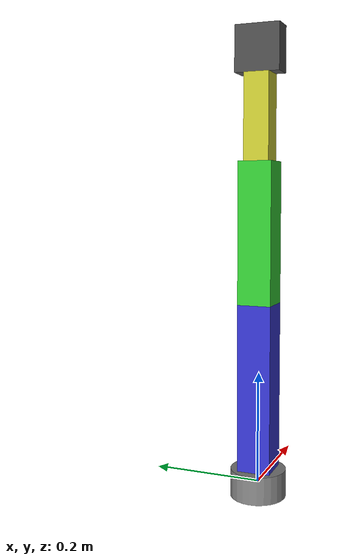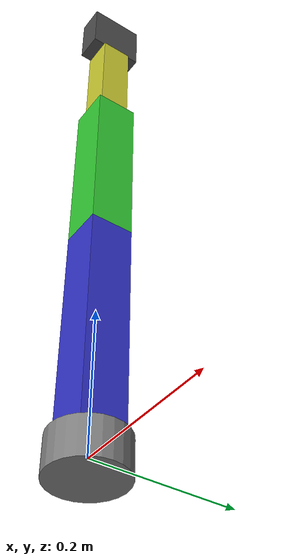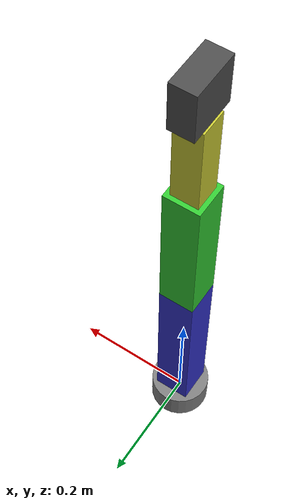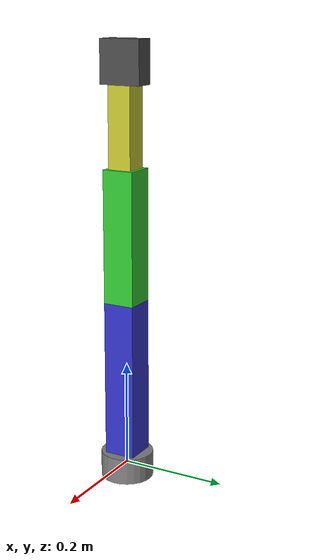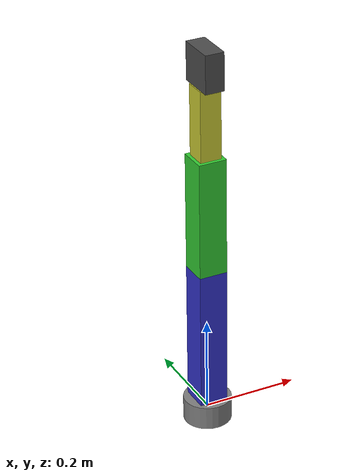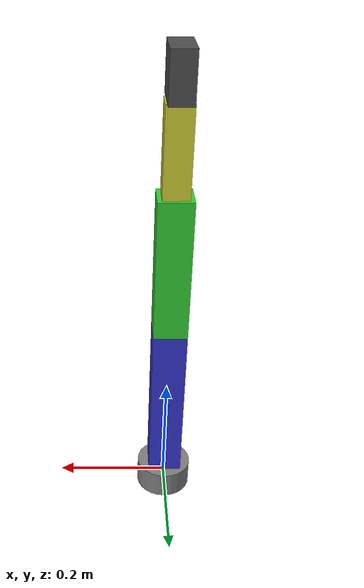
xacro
<?xml version="1.0"?>
<robot name="arm_with_gripper" xmlns:xacro="http://www.ros.org/wiki/xacro">

  <xacro:property name="link1_length" value="0.3"/>
  <xacro:property name="link2_length" value="0.25"/>
  <xacro:property name="link3_length" value="0.15"/>
  <xacro:property name="link_radius" value="0.03"/>
  <xacro:property name="link_mass" value="0.5"/>

  <link name="base_link">
    <visual>
      <geometry><cylinder radius="0.05" length="0.05"/></geometry>
      <material name="gray"><color rgba="0.5 0.5 0.5 1"/></material>
    </visual>
    <collision>
      <geometry><cylinder radius="0.05" length="0.05"/></geometry>
    </collision>
    <inertial>
      <mass value="1.0"/>
      <inertia ixx="0.01" ixy="0" ixz="0" iyy="0.01" iyz="0" izz="0.01"/>
    </inertial>
  </link>

  <link name="link1">
    <visual>
      <origin xyz="0 0 ${link1_length/2}" rpy="0 0 0"/>
      <geometry><box size="${link_radius*2} ${link_radius*2} ${link1_length}"/></geometry>
      <material name="blue"><color rgba="0.2 0.2 0.8 1"/></material>
    </visual>
    <collision>
      <origin xyz="0 0 ${link1_length/2}" rpy="0 0 0"/>
      <geometry><box size="${link_radius*2} ${link_radius*2} ${link1_length}"/></geometry>
    </collision>
    <inertial>
      <origin xyz="0 0 ${link1_length/2}" rpy="0 0 0"/>
      <mass value="${link_mass}"/>
      <inertia ixx="0.01" ixy="0" ixz="0" iyy="0.01" iyz="0" izz="0.005"/>
    </inertial>
  </link>

  <joint name="joint1" type="revolute">
    <parent link="base_link"/>
    <child link="link1"/>
    <origin xyz="0 0 0.025" rpy="0 0 0"/>
    <axis xyz="0 0 1"/>
    <limit lower="-3.14159" upper="3.14159" effort="10.0" velocity="1.0"/>
  </joint>

  <link name="link2">
    <visual>
      <origin xyz="0 0 ${link2_length/2}" rpy="0 0 0"/>
      <geometry><box size="${link_radius*2} ${link_radius*2} ${link2_length}"/></geometry>
      <material name="green"><color rgba="0.2 0.8 0.2 1"/></material>
    </visual>
    <collision>
      <origin xyz="0 0 ${link2_length/2}" rpy="0 0 0"/>
      <geometry><box size="${link_radius*2} ${link_radius*2} ${link2_length}"/></geometry>
    </collision>
    <inertial>
      <origin xyz="0 0 ${link2_length/2}" rpy="0 0 0"/>
      <mass value="${link_mass * 0.7}"/>
      <inertia ixx="0.005" ixy="0" ixz="0" iyy="0.005" iyz="0" izz="0.002"/>
    </inertial>
  </link>

  <joint name="joint2" type="revolute">
    <parent link="link1"/>
    <child link="link2"/>
    <origin xyz="0 0 ${link1_length}" rpy="0 0 0"/>
    <axis xyz="0 1 0"/>
    <limit lower="-2.0" upper="2.0" effort="10.0" velocity="1.0"/>
  </joint>

  <link name="link3">
    <visual>
      <origin xyz="0 0 ${link3_length/2}" rpy="0 0 0"/>
      <geometry><box size="${link_radius*1.5} ${link_radius*1.5} ${link3_length}"/></geometry>
      <material name="yellow"><color rgba="0.8 0.8 0.2 1"/></material>
    </visual>
    <collision>
      <origin xyz="0 0 ${link3_length/2}" rpy="0 0 0"/>
      <geometry><box size="${link_radius*1.5} ${link_radius*1.5} ${link3_length}"/></geometry>
    </collision>
    <inertial>
      <origin xyz="0 0 ${link3_length/2}" rpy="0 0 0"/>
      <mass value="${link_mass * 0.4}"/>
      <inertia ixx="0.002" ixy="0" ixz="0" iyy="0.002" iyz="0" izz="0.001"/>
    </inertial>
  </link>

  <joint name="joint3" type="revolute">
    <parent link="link2"/>
    <child link="link3"/>
    <origin xyz="0 0 ${link2_length}" rpy="0 0 0"/>
    <axis xyz="0 1 0"/>
    <limit lower="-2.0" upper="2.0" effort="5.0" velocity="1.0"/>
  </joint>

  <link name="gripper">
    <visual>
      <origin xyz="0 0 0.04" rpy="0 0 0"/>
      <geometry><box size="0.04 0.08 0.08"/></geometry>
      <material name="dark_gray"><color rgba="0.3 0.3 0.3 1"/></material>
    </visual>
    <collision>
      <origin xyz="0 0 0.04" rpy="0 0 0"/>
      <geometry><box size="0.04 0.08 0.08"/></geometry>
    </collision>
    <inertial>
      <origin xyz="0 0 0.04" rpy="0 0 0"/>
      <mass value="0.1"/>
      <inertia ixx="0.0001" ixy="0" ixz="0" iyy="0.0001" iyz="0" izz="0.0001"/>
    </inertial>
  </link>

  <joint name="gripper_joint" type="fixed">
    <parent link="link3"/>
    <child link="gripper"/>
    <origin xyz="0 0 ${link3_length}" rpy="0 0 0"/>
  </joint>

</robot>
